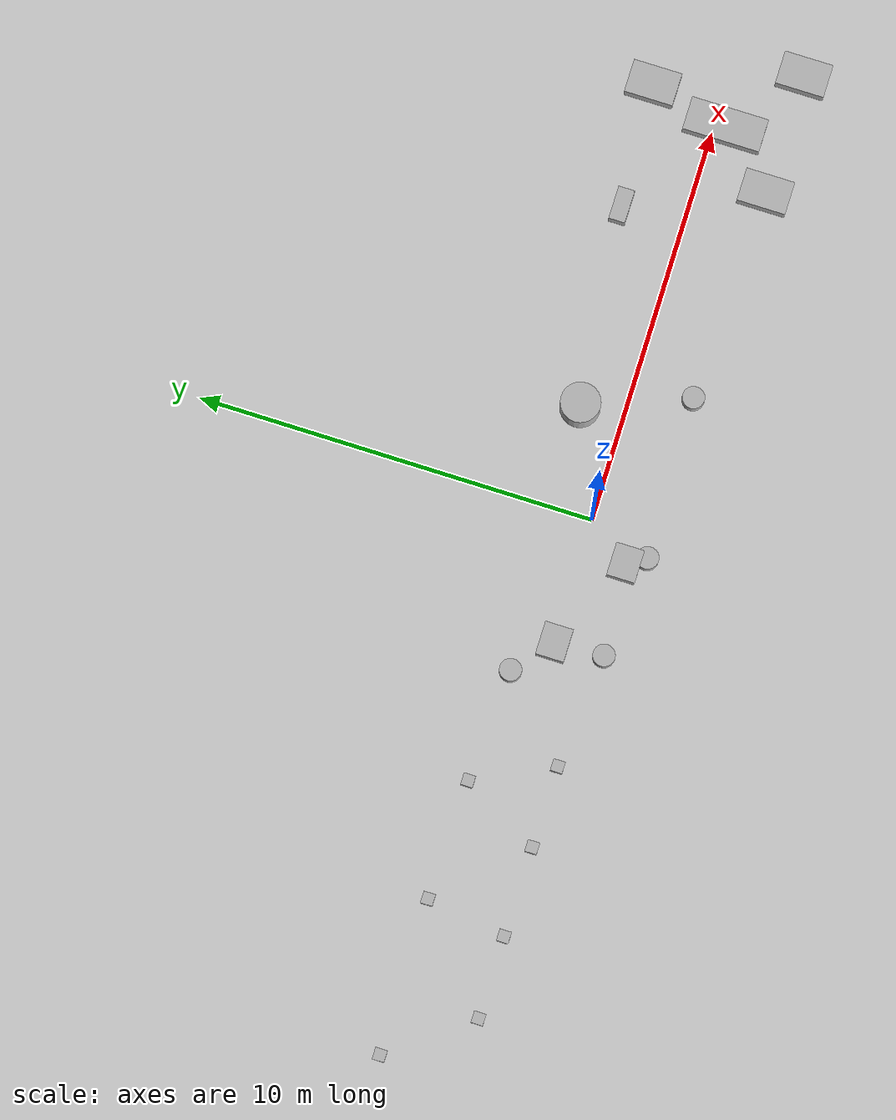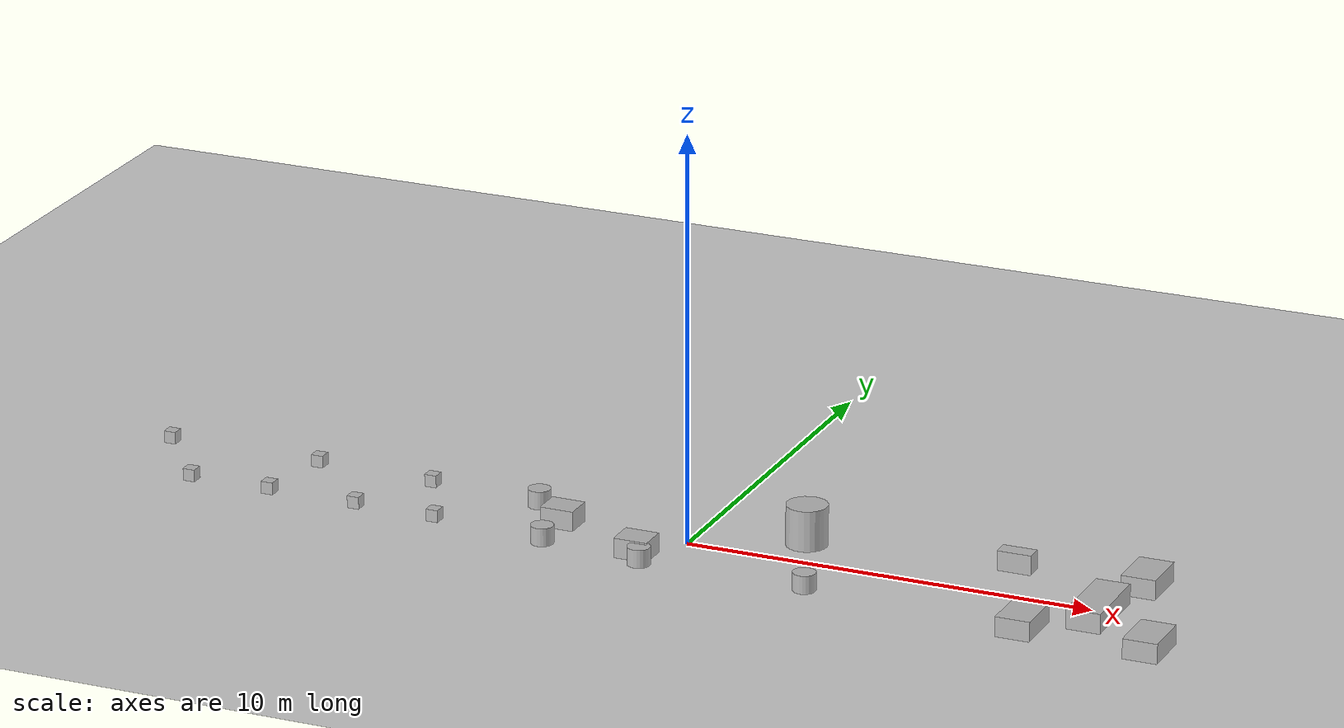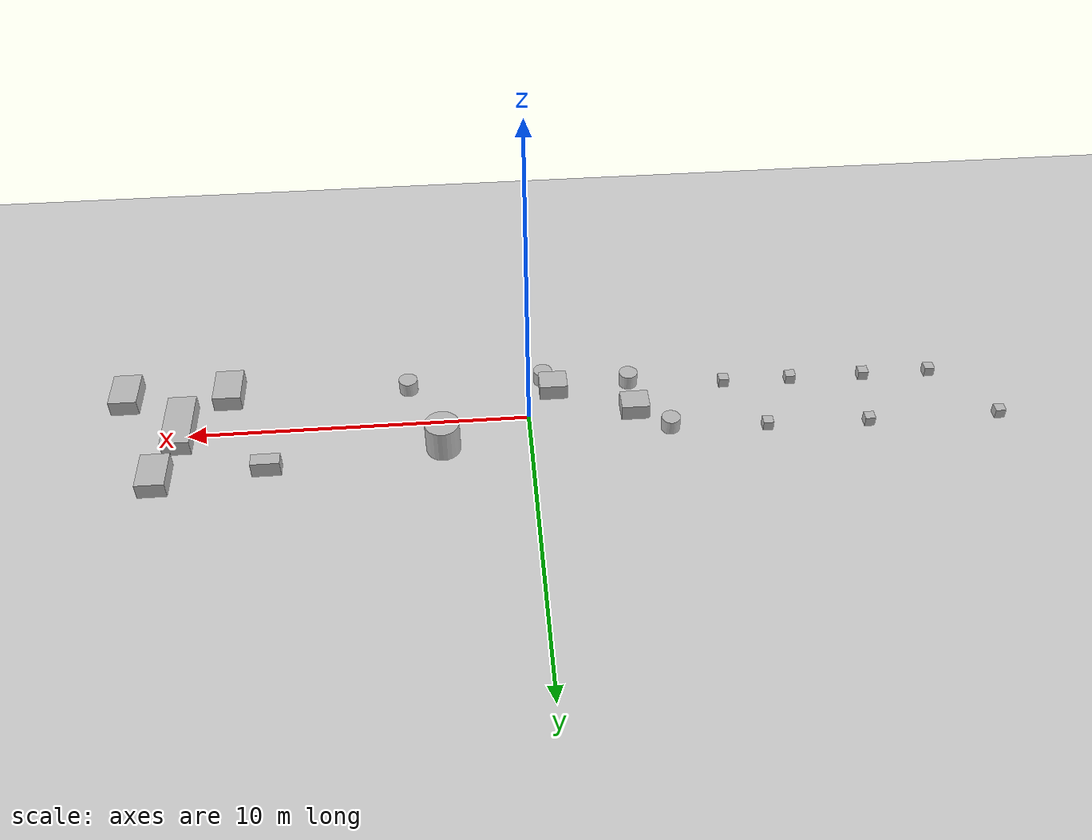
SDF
<sdf version="1.4">
 <world name="default">
  <include><uri>model://sun</uri></include>
  <include><uri>model://ground_plane</uri></include>
  <physics type="ode">
   <real_time_update_rate>1000.0</real_time_update_rate>
   <max_step_size>0.001</max_step_size>
   <real_time_factor>1</real_time_factor>
   <ode>
    <solver>
     <type>quick</type>
     <iters>150</iters>
     <precon_iters>0</precon_iters>
     <sor>1.400000</sor>
     <use_dynamic_moi_rescaling>1</use_dynamic_moi_rescaling>
    </solver>
    <constraints>
     <cfm>0.00001</cfm>
     <erp>0.2</erp>
     <contact_max_correcting_vel>2000.000000</contact_max_correcting_vel>
     <contact_surface_layer>0.01000</contact_surface_layer>
    </constraints>
   </ode>
  </physics>
  <model name="box_1">
   <pose>-3.15305 -0.028544 0.243066 0 -0 0</pose>
   <link name="link">
    <inertial>
     <mass>1</mass>
     <inertia>
      <ixx>0.166667</ixx>
      <ixy>0</ixy>
      <ixz>0</ixz>
      <iyy>0.166667</iyy>
      <iyz>0</iyz>
      <izz>0.166667</izz>
     </inertia>
    </inertial>
    <collision name="collision">
     <geometry><box><size>0.832545 0.712184 0.486131</size></box></geometry>
    </collision>
    <visual name="visual"><geometry><box><size>0.832545 0.712184 0.486131</size></box></geometry></visual>
   </link>
  </model>
  <model name="box_2">
   <pose>-0.800903 -1.10327 0.243066 0 -0 0</pose>
   <link name="link">
    <inertial>
     <mass>1</mass>
     <inertia>
      <ixx>0.166667</ixx>
      <ixy>0</ixy>
      <ixz>0</ixz>
      <iyy>0.166667</iyy>
      <iyz>0</iyz>
      <izz>0.166667</izz>
     </inertia>
    </inertial>
    <collision name="collision">
     <geometry><box><size>0.832545 0.712184 0.486131</size></box></geometry>
    </collision>
    <visual name="visual"><geometry><box><size>0.832545 0.712184 0.486131</size></box></geometry></visual>
   </link>
  </model>
  <model name="box_3">
   <pose>7.57023 1.58634 0.243066 0 -0 0</pose>
   <link name="link">
    <inertial>
     <mass>1</mass>
     <inertia>
      <ixx>0.166667</ixx>
      <ixy>0</ixy>
      <ixz>0</ixz>
      <iyy>0.166667</iyy>
      <iyz>0</iyz>
      <izz>0.166667</izz>
     </inertia>
    </inertial>
    <collision name="collision"><geometry><box><size>0.832545 0.41249 0.486131</size></box></geometry></collision>
    <visual name="visual"><geometry><box><size>0.832545 0.41249 0.486131</size></box></geometry></visual>
   </link>
  </model>
  <model name="box_4">
   <pose>8.93395 -1.67677 0.243066 0 -0 -3e-06</pose>
   <link name="link">
    <inertial>
     <mass>1</mass>
     <inertia>
      <ixx>0.166667</ixx>
      <ixy>0</ixy>
      <ixz>0</ixz>
      <iyy>0.166667</iyy>
      <iyz>0</iyz>
      <izz>0.166667</izz>
     </inertia>
    </inertial>
    <collision name="collision"><geometry><box><size>0.832545 1.22961 0.486131</size></box></geometry></collision>
    <visual name="visual"><geometry><box><size>0.832545 1.22961 0.486131</size></box></geometry></visual>
   </link>
  </model>
  <model name="box_5">
   <pose>10.6858 1.74416 0.243066 0 0 -3e-06</pose>
   <link name="link">
    <inertial>
     <mass>1</mass>
     <inertia>
      <ixx>0.166667</ixx>
      <ixy>0</ixy>
      <ixz>0</ixz>
      <iyy>0.166667</iyy>
      <iyz>0</iyz>
      <izz>0.166667</izz>
     </inertia>
    </inertial>
    <collision name="collision"><geometry><box><size>0.832545 1.22961 0.486131</size></box></geometry></collision>
    <visual name="visual"><geometry><box><size>0.832545 1.22961 0.486131</size></box></geometry></visual>
   </link>
  </model>
  <model name="box_6">
   <pose>11.9853 -1.72376 0.243066 0 0 -3e-06</pose>
   <link name="link">
    <inertial>
     <mass>1</mass>
     <inertia>
      <ixx>0.166667</ixx>
      <ixy>0</ixy>
      <ixz>0</ixz>
      <iyy>0.166667</iyy>
      <iyz>0</iyz>
      <izz>0.166667</izz>
     </inertia>
    </inertial>
    <collision name="collision"><geometry><box><size>0.832545 1.22961 0.486131</size></box></geometry></collision>
    <visual name="visual"><geometry><box><size>0.832545 1.22961 0.486131</size></box></geometry></visual>
   </link>
  </model>
  <model name="box_7">
   <pose>10.2257 -0.24986 0.243066 0 0 -3e-06</pose>
   <link name="link">
    <inertial>
     <mass>1</mass>
     <inertia>
      <ixx>0.166667</ixx>
      <ixy>0</ixy>
      <ixz>0</ixz>
      <iyy>0.166667</iyy>
      <iyz>0</iyz>
      <izz>0.166667</izz>
     </inertia>
    </inertial>
    <collision name="collision"><geometry><box><size>0.832545 1.95429 0.486131</size></box></geometry></collision>
    <visual name="visual"><geometry><box><size>0.832545 1.95429 0.486131</size></box></geometry></visual>
   </link>
  </model>
  <model name="box_8">
   <pose>10.6858 1.74416 0.243066 0 0 -3e-06</pose>
   <link name="link">
    <inertial>
     <mass>1</mass>
     <inertia>
      <ixx>0.166667</ixx>
      <ixy>0</ixy>
      <ixz>0</ixz>
      <iyy>0.166667</iyy>
      <iyz>0</iyz>
      <izz>0.166667</izz>
     </inertia>
    </inertial>
    <collision name="collision"><geometry><box><size>0.832545 1.22961 0.486131</size></box></geometry></collision>
    <visual name="visual"><geometry><box><size>0.832545 1.22961 0.486131</size></box></geometry></visual>
   </link>
  </model>
  <model name="box_9">
   <pose>11.9853 -1.72376 0.243066 0 0 -3e-06</pose>
   <link name="link">
    <inertial>
     <mass>1</mass>
     <inertia>
      <ixx>0.166667</ixx>
      <ixy>0</ixy>
      <ixz>0</ixz>
      <iyy>0.166667</iyy>
      <iyz>0</iyz>
      <izz>0.166667</izz>
     </inertia>
    </inertial>
    <collision name="collision"><geometry><box><size>0.832545 1.22961 0.486131</size></box></geometry></collision>
    <visual name="visual"><geometry><box><size>0.832545 1.22961 0.486131</size></box></geometry></visual>
   </link>
  </model>
  <model name="box_10">
   <pose>10.2257 -0.24986 0.243066 0 0 -3e-06</pose>
   <link name="link">
    <inertial>
     <mass>1</mass>
     <inertia>
      <ixx>0.166667</ixx>
      <ixy>0</ixy>
      <ixz>0</ixz>
      <iyy>0.166667</iyy>
      <iyz>0</iyz>
      <izz>0.166667</izz>
     </inertia>
    </inertial>
    <collision name="collision"><geometry><box><size>0.832545 1.95429 0.486131</size></box></geometry></collision>
    <visual name="visual"><geometry><box><size>0.832545 1.95429 0.486131</size></box></geometry></visual>
   </link>
  </model>
  <model name="cylinder_1">
   <pose>2.55143 1.08863 0.5 0 -0 0</pose>
   <link name="link">
    <inertial>
     <mass>1</mass>
     <inertia><ixx>0.145833</ixx><ixy>0</ixy><ixz>0</ixz><iyy>0.145833</iyy><iyz>0</iyz><izz>0.125</izz></inertia>
    </inertial>
    <collision name="collision">
     <geometry><cylinder><radius>0.5</radius><length>0.999998</length></cylinder></geometry>
    </collision>
    <visual name="visual">
     <geometry><cylinder><radius>0.5</radius><length>0.999998</length></cylinder></geometry>
    </visual>
   </link>
  </model>
  <model name="cylinder_2">
   <pose>-3.11174 -1.27262 0.222892 0 -0 0</pose>
   <link name="link">
    <inertial>
     <mass>1</mass>
     <inertia><ixx>0.145833</ixx><ixy>0</ixy><ixz>0</ixz><iyy>0.145833</iyy><iyz>0</iyz><izz>0.125</izz></inertia>
    </inertial>
    <collision name="collision">
     <geometry><cylinder><radius>0.278354</radius><length>0.445785</length></cylinder></geometry>
    </collision>
    <visual name="visual">
     <geometry><cylinder><radius>0.278354</radius><length>0.445785</length></cylinder></geometry>
    </visual>
   </link>
  </model>
  <model name="cylinder_3">
   <pose>3.55449 -1.48911 0.22289 2e-06 2e-06 0</pose>
   <link name="link">
    <inertial>
     <mass>1</mass>
     <inertia><ixx>0.145833</ixx><ixy>0</ixy><ixz>0</ixz><iyy>0.145833</iyy><iyz>0</iyz><izz>0.125</izz></inertia>
    </inertial>
    <collision name="collision">
     <geometry><cylinder><radius>0.278354</radius><length>0.445785</length></cylinder></geometry>
    </collision>
    <visual name="visual">
     <geometry><cylinder><radius>0.278354</radius><length>0.445785</length></cylinder></geometry>
    </visual>
   </link>
  </model>
  <model name="cylinder_4">
   <pose>-0.526371 -1.58176 0.222885 -2e-06 -2e-06 0</pose>
   <link name="link">
    <inertial>
     <mass>1</mass>
     <inertia><ixx>0.145833</ixx><ixy>0</ixy><ixz>0</ixz><iyy>0.145833</iyy><iyz>0</iyz><izz>0.125</izz></inertia>
    </inertial>
    <collision name="collision">
     <geometry><cylinder><radius>0.278354</radius><length>0.445785</length></cylinder></geometry>
    </collision>
    <visual name="visual">
     <geometry><cylinder><radius>0.278354</radius><length>0.445785</length></cylinder></geometry>
    </visual>
   </link>
  </model>
  <model name="cylinder_5">
   <pose>-4.12027 0.785226 0.22289 2e-06 2e-06 0</pose>
   <link name="link">
    <inertial>
     <mass>1</mass>
     <inertia><ixx>0.145833</ixx><ixy>0</ixy><ixz>0</ixz><iyy>0.145833</iyy><iyz>0</iyz><izz>0.125</izz></inertia>
    </inertial>
    <collision name="collision">
     <geometry><cylinder><radius>0.278354</radius><length>0.445785</length></cylinder></geometry>
    </collision>
    <visual name="visual">
     <geometry><cylinder><radius>0.278354</radius><length>0.445785</length></cylinder></geometry>
    </visual>
   </link>
  </model>
  <model name="DynamicObstacle_1">
   <pose>-8.05619 -0.992958 0.15 0 -0 0</pose>
   <link name="link">
    <inertial>
     <inertia><ixx>0.17</ixx><ixy>0</ixy><ixz>0</ixz><iyy>0.17</iyy><iyz>0</iyz><izz>0.17</izz></inertia>
     <mass>100</mass>
    </inertial>
    <collision name="collision">
     <max_contacts>0</max_contacts>
     <geometry><box><size>0.3 0.3 0.3</size></box></geometry>
     <surface>
      <friction><ode><mu>0</mu><mu2>0</mu2></ode></friction>
      <bounce><restitution_coefficient>0</restitution_coefficient><threshold>0</threshold></bounce>
      <contact><ode><kp>2e+09</kp><kd>1</kd><max_vel>0.01</max_vel><min_depth>0</min_depth></ode></contact>
     </surface>
    </collision>
    <visual name="visual"><geometry><box><size>0.3 0.3 0.3</size></box></geometry></visual>
   </link>
   <plugin name="random" filename="libRandomVelocityPlugin.so">
    <link>link</link>
    <initial_velocity>0.5 0.0 0</initial_velocity>
    <velocity_factor>0.2</velocity_factor>
    <update_period>5</update_period>
    <min_z>-5</min_z>
    <max_z>0</max_z>
   </plugin>
  </model>
  <model name="DynamicObstacle_2">
   <pose>-9.997 1.03839 0.15 0 -0 0</pose>
   <link name="link">
    <inertial>
     <inertia><ixx>0.17</ixx><ixy>0</ixy><ixz>0</ixz><iyy>0.17</iyy><iyz>0</iyz><izz>0.17</izz></inertia>
     <mass>100</mass>
    </inertial>
    <collision name="collision">
     <max_contacts>0</max_contacts>
     <geometry><box><size>0.3 0.3 0.3</size></box></geometry>
     <surface>
      <friction><ode><mu>0</mu><mu2>0</mu2></ode></friction>
      <bounce><restitution_coefficient>0</restitution_coefficient><threshold>0</threshold></bounce>
      <contact><ode><kp>2e+09</kp><kd>1</kd><max_vel>0.01</max_vel><min_depth>0</min_depth></ode></contact>
     </surface>
    </collision>
    <visual name="visual"><geometry><box><size>0.3 0.3 0.3</size></box></geometry></visual>
   </link>
   <plugin name="random" filename="libRandomVelocityPlugin.so">
    <link>link</link>
    <initial_velocity>0.5 0.0 0</initial_velocity>
    <velocity_factor>0.2</velocity_factor>
    <update_period>5</update_period>
    <min_z>-5</min_z>
    <max_z>0</max_z>
   </plugin>
  </model>
  <model name="DynamicObstacle_3">
   <pose>-12.3843 -0.985271 0.15 0 -0 0</pose>
   <link name="link">
    <inertial>
     <inertia><ixx>0.17</ixx><ixy>0</ixy><ixz>0</ixz><iyy>0.17</iyy><iyz>0</iyz><izz>0.17</izz></inertia>
     <mass>100</mass>
    </inertial>
    <collision name="collision">
     <max_contacts>0</max_contacts>
     <geometry><box><size>0.3 0.3 0.3</size></box></geometry>
     <surface>
      <friction><ode><mu>0</mu><mu2>0</mu2></ode></friction>
      <bounce><restitution_coefficient>0</restitution_coefficient><threshold>0</threshold></bounce>
      <contact><ode><kp>2e+09</kp><kd>1</kd><max_vel>0.01</max_vel><min_depth>0</min_depth></ode></contact>
     </surface>
    </collision>
    <visual name="visual"><geometry><box><size>0.3 0.3 0.3</size></box></geometry></visual>
   </link>
   <plugin name="random" filename="libRandomVelocityPlugin.so">
    <link>link</link>
    <initial_velocity>0.5 0.0 0</initial_velocity>
    <velocity_factor>0.2</velocity_factor>
    <update_period>5</update_period>
    <min_z>-5</min_z>
    <max_z>0</max_z>
   </plugin>
  </model>
  <model name="DynamicObstacle_4">
   <pose>-13.9295 1.02427 0.15 0 -0 0</pose>
   <link name="link">
    <inertial>
     <inertia><ixx>0.17</ixx><ixy>0</ixy><ixz>0</ixz><iyy>0.17</iyy><iyz>0</iyz><izz>0.17</izz></inertia>
     <mass>100</mass>
    </inertial>
    <collision name="collision">
     <max_contacts>0</max_contacts>
     <geometry><box><size>0.3 0.3 0.3</size></box></geometry>
     <surface>
      <friction><ode><mu>0</mu><mu2>0</mu2></ode></friction>
      <bounce><restitution_coefficient>0</restitution_coefficient><threshold>0</threshold></bounce>
      <contact><ode><kp>2e+09</kp><kd>1</kd><max_vel>0.01</max_vel><min_depth>0</min_depth></ode></contact>
     </surface>
    </collision>
    <visual name="visual"><geometry><box><size>0.3 0.3 0.3</size></box></geometry></visual>
   </link>
   <plugin name="random" filename="libRandomVelocityPlugin.so">
    <link>link</link>
    <initial_velocity>0.5 0.0 0</initial_velocity>
    <velocity_factor>0.2</velocity_factor>
    <update_period>5</update_period>
    <min_z>-5</min_z>
    <max_z>0</max_z>
   </plugin>
  </model>
  <model name="DynamicObstacle_5">
   <pose>-6.97587 0.96745 0.15 0 -0 0</pose>
   <link name="link">
    <inertial>
     <inertia><ixx>0.17</ixx><ixy>0</ixy><ixz>0</ixz><iyy>0.17</iyy><iyz>0</iyz><izz>0.17</izz></inertia>
     <mass>100</mass>
    </inertial>
    <collision name="collision">
     <max_contacts>0</max_contacts>
     <geometry><box><size>0.3 0.3 0.3</size></box></geometry>
     <surface>
      <friction><ode><mu>0</mu><mu2>0</mu2></ode></friction>
      <bounce><restitution_coefficient>0</restitution_coefficient><threshold>0</threshold></bounce>
      <contact><ode><kp>2e+09</kp><kd>1</kd><max_vel>0.01</max_vel><min_depth>0</min_depth></ode></contact>
     </surface>
    </collision>
    <visual name="visual"><geometry><box><size>0.3 0.3 0.3</size></box></geometry></visual>
   </link>
   <plugin name="random" filename="libRandomVelocityPlugin.so">
    <link>link</link>
    <initial_velocity>0.5 0.0 0</initial_velocity>
    <velocity_factor>0.2</velocity_factor>
    <update_period>5</update_period>
    <min_z>-5</min_z>
    <max_z>0</max_z>
   </plugin>
  </model>
  <model name="DynamicObstacle_6">
   <pose>-10.3173 -0.983401 0.15 0 -0 0</pose>
   <link name="link">
    <inertial>
     <inertia><ixx>0.17</ixx><ixy>0</ixy><ixz>0</ixz><iyy>0.17</iyy><iyz>0</iyz><izz>0.17</izz></inertia>
     <mass>100</mass>
    </inertial>
    <collision name="collision">
     <max_contacts>0</max_contacts>
     <geometry><box><size>0.3 0.3 0.3</size></box></geometry>
     <surface>
      <friction><ode><mu>0</mu><mu2>0</mu2></ode></friction>
      <bounce><restitution_coefficient>0</restitution_coefficient><threshold>0</threshold></bounce>
      <contact><ode><kp>2e+09</kp><kd>1</kd><max_vel>0.01</max_vel><min_depth>0</min_depth></ode></contact>
     </surface>
    </collision>
    <visual name="visual"><geometry><box><size>0.3 0.3 0.3</size></box></geometry></visual>
   </link>
   <plugin name="random" filename="libRandomVelocityPlugin.so">
    <link>link</link>
    <initial_velocity>0.5 0.0 0</initial_velocity>
    <velocity_factor>0.2</velocity_factor>
    <update_period>5</update_period>
    <min_z>-5</min_z>
    <max_z>0</max_z>
   </plugin>
  </model>
  <model name="DynamicObstacle_7">
   <pose>-6.0031 -1.00282 0.15 0 -0 0</pose>
   <link name="link">
    <inertial>
     <inertia><ixx>0.17</ixx><ixy>0</ixy><ixz>0</ixz><iyy>0.17</iyy><iyz>0</iyz><izz>0.17</izz></inertia>
     <mass>100</mass>
    </inertial>
    <collision name="collision">
     <max_contacts>0</max_contacts>
     <geometry><box><size>0.3 0.3 0.3</size></box></geometry>
     <surface>
      <friction><ode><mu>0</mu><mu2>0</mu2></ode></friction>
      <bounce><restitution_coefficient>0</restitution_coefficient><threshold>0</threshold></bounce>
      <contact><ode><kp>2e+09</kp><kd>1</kd><max_vel>0.01</max_vel><min_depth>0</min_depth></ode></contact>
     </surface>
    </collision>
    <visual name="visual"><geometry><box><size>0.3 0.3 0.3</size></box></geometry></visual>
   </link>
   <plugin name="random" filename="libRandomVelocityPlugin.so">
    <link>link</link>
    <initial_velocity>0.5 0.0 0</initial_velocity>
    <velocity_factor>0.2</velocity_factor>
    <update_period>5</update_period>
    <min_z>-5</min_z>
    <max_z>0</max_z>
   </plugin>
  </model>
  <scene><ambient>0.4 0.4 0.4 1</ambient><background>0.7 0.7 0.7 1</background><shadows>true</shadows></scene>
 </world>
</sdf>
